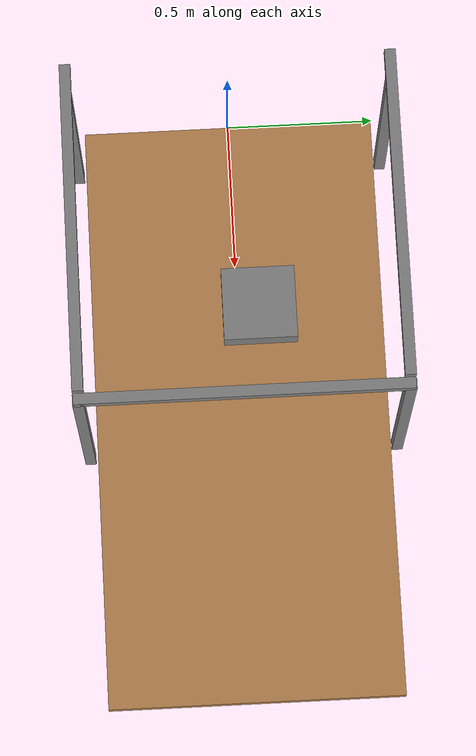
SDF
<?xml version="1.0"?>
<sdf version="1.7">
  <model name="table">
    <link name="table_body">
      <visual name="table_visual">
        <pose degrees="True"> 1 0 -0.02 0 0 0</pose>
        <geometry>
          <box>
            <size>2 0.99 0.04</size>
          </box>
        </geometry>
        <material>
          <ambient>0.2 0.15 0.1 1</ambient>
          <diffuse>0.7 0.5 0.3 1</diffuse>
          <emissive>0 0 0 1</emissive>
          <specular>0.02 0.02 0.02 1</specular>
        </material>
      </visual>
      <collision name="table_collision">
        <pose> 1 0 -0.02 0 0 0</pose>
        <geometry>
          <box>
            <size>2 0.99 0.04</size>
          </box>
        </geometry>
      </collision>
    </link>
    <link name="extrusion_frame">
      <visual name="extrusion_frame_visual_0">
        <pose> 0.111 0.525 0.305 0 0 0</pose>
        <geometry>
          <box>
            <size>0.036 0.036 0.91</size>
          </box>
        </geometry>
        <material>
          <diffuse>0.5 0.5 0.5 1.0</diffuse>
        </material>
      </visual>
      <visual name="extrusion_frame_visual_1">
        <pose> 0.111 -0.525 0.305 0 0 0</pose>
        <geometry>
          <box>
            <size>0.036 0.036 0.91</size>
          </box>
        </geometry>
        <material>
          <diffuse>0.5 0.5 0.5 1.0</diffuse>
        </material>
      </visual>
      <visual name="extrusion_frame_visual_2">
        <pose> 1.117 0.525 0.305 0 0 0</pose>
        <geometry>
          <box>
            <size>0.036 0.036 0.91</size>
          </box>
        </geometry>
        <material>
          <diffuse>0.5 0.5 0.5 1.0</diffuse>
        </material>
      </visual>
      <visual name="extrusion_frame_visual_3">
        <pose> 1.117 -0.525 0.305 0 0 0</pose>
        <geometry>
          <box>
            <size>0.036 0.036 0.91</size>
          </box>
        </geometry>
        <material>
          <diffuse>0.5 0.5 0.5 1.0</diffuse>
        </material>
      </visual>
      <visual name="extrusion_frame_visual_4">
        <pose> 0.551 0.525 0.756 0 0 0</pose>
        <geometry>
          <box>
            <size>1.08 0.036 0.036</size>
          </box>
        </geometry>
        <material>
          <diffuse>0.5 0.5 0.5 1.0</diffuse>
        </material>
      </visual>
      <visual name="extrusion_frame_visual_5">
        <pose> 0.551 -0.525 0.756 0 0 0</pose>
        <geometry>
          <box>
            <size>1.08 0.036 0.036</size>
          </box>
        </geometry>
        <material>
          <diffuse>0.5 0.5 0.5 1.0</diffuse>
        </material>
      </visual>
      <visual name="extrusion_frame_visual_6">
        <pose> 1.117 0 0.756 0 0 0</pose>
        <geometry>
          <box>
            <size>0.036 1.08 0.036</size>
          </box>
        </geometry>
        <material>
          <diffuse>0.5 0.5 0.5 1.0</diffuse>
        </material>
      </visual>
      <collision name="extrusion_frame_collision_0">
        <pose> 0.111 0.511 0.305 0 0 0</pose>
        <geometry>
          <box>
            <size>0.036 0.036 0.91</size>
          </box>
        </geometry>
      </collision>
      <collision name="extrusion_frame_collision_1">
        <pose> 0.111 -0.511 0.305 0 0 0</pose>
        <geometry>
          <box>
            <size>0.036 0.036 0.91</size>
          </box>
        </geometry>
      </collision>
      <collision name="extrusion_frame_collision_2">
        <pose> 1.109 0.511 0.305 0 0 0</pose>
        <geometry>
          <box>
            <size>0.036 0.036 0.91</size>
          </box>
        </geometry>
      </collision>
      <collision name="extrusion_frame_collision_3">
        <pose> 1.109 -0.511 0.305 0 0 0</pose>
        <geometry>
          <box>
            <size>0.036 0.036 0.91</size>
          </box>
        </geometry>
      </collision>
      <collision name="extrusion_frame_collision_4">
        <pose> 0.551 0.511 0.778 0 0 0</pose>
        <geometry>
          <box>
            <size>1.08 0.036 0.036</size>
          </box>
        </geometry>
      </collision>
      <collision name="extrusion_frame_collision_5">
        <pose> 0.551 -0.511 0.778 0 0 0</pose>
        <geometry>
          <box>
            <size>1.08 0.036 0.036</size>
          </box>
        </geometry>
      </collision>
      <collision name="extrusion_frame_collision_6">
        <pose> 1.109 0 0.778 0 0 0</pose>
        <geometry>
          <box>
            <size>0.036 1.08 0.036</size>
          </box>
        </geometry>
      </collision>
    </link>
    <link name="scale_link">
      <pose> 0.65 0.075 0.0375 0 0 0</pose>
      <visual name="scale_visual">
        <geometry>
          <box>
            <size>0.25 0.25 0.08</size>
          </box>
        </geometry>
        <material>
          <diffuse>0.5 0.5 0.5 1.0</diffuse>
        </material>
      </visual>
      <collision name="scale_collision">
        <geometry>
          <box>
            <size>0.4 0.4 0.08</size>
          </box>
        </geometry>
      </collision>
    </link>
    <joint name="extrusion_weld" type="fixed">
      <parent>table_body</parent>
      <child>extrusion_frame</child>
    </joint>
    <joint name="scale_weld" type="fixed">
      <parent>table_body</parent>
      <child>scale_link</child>
    </joint>
  </model>
</sdf>
